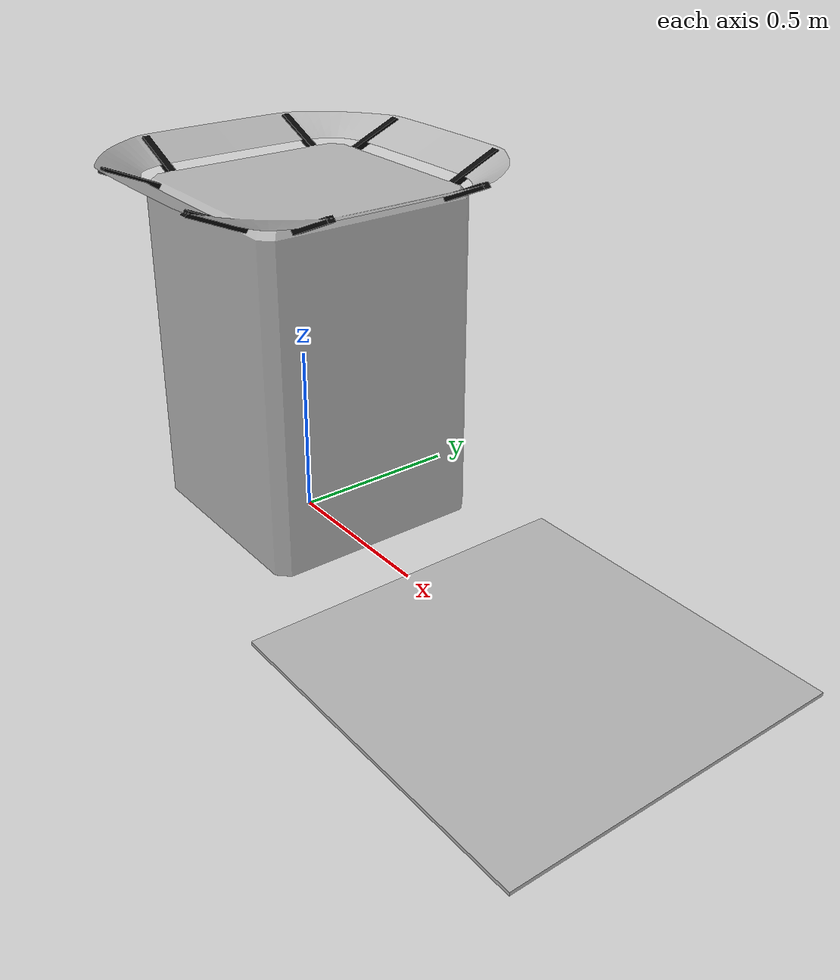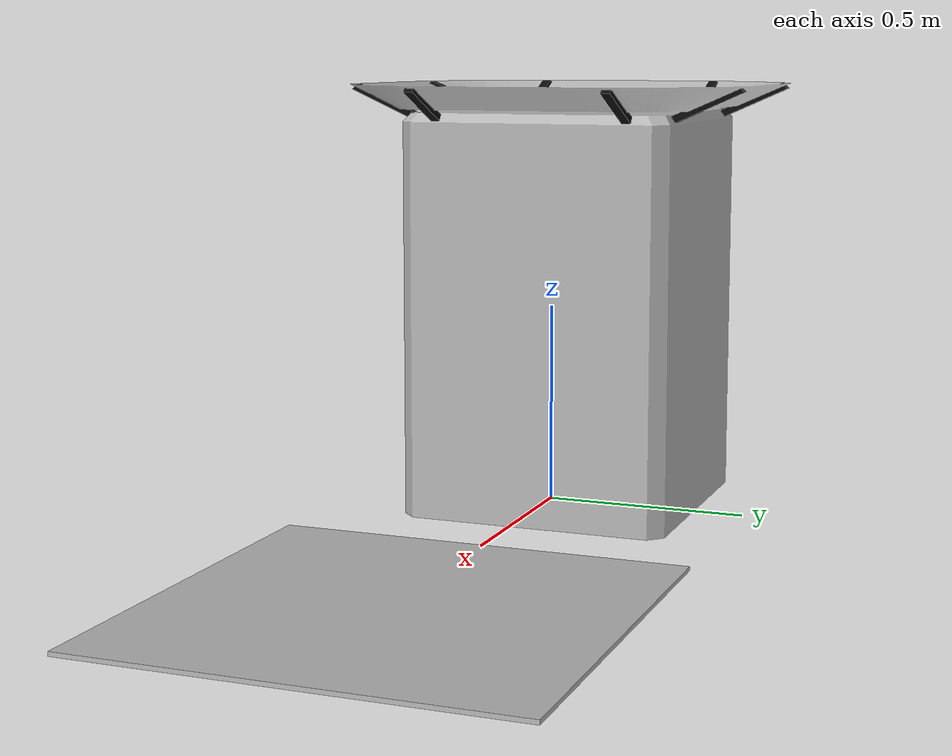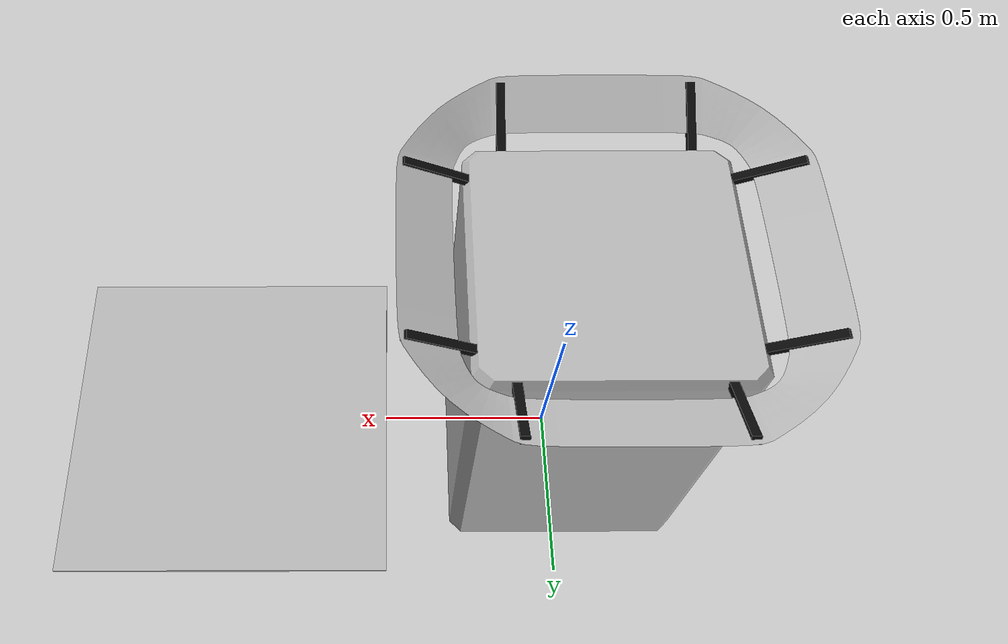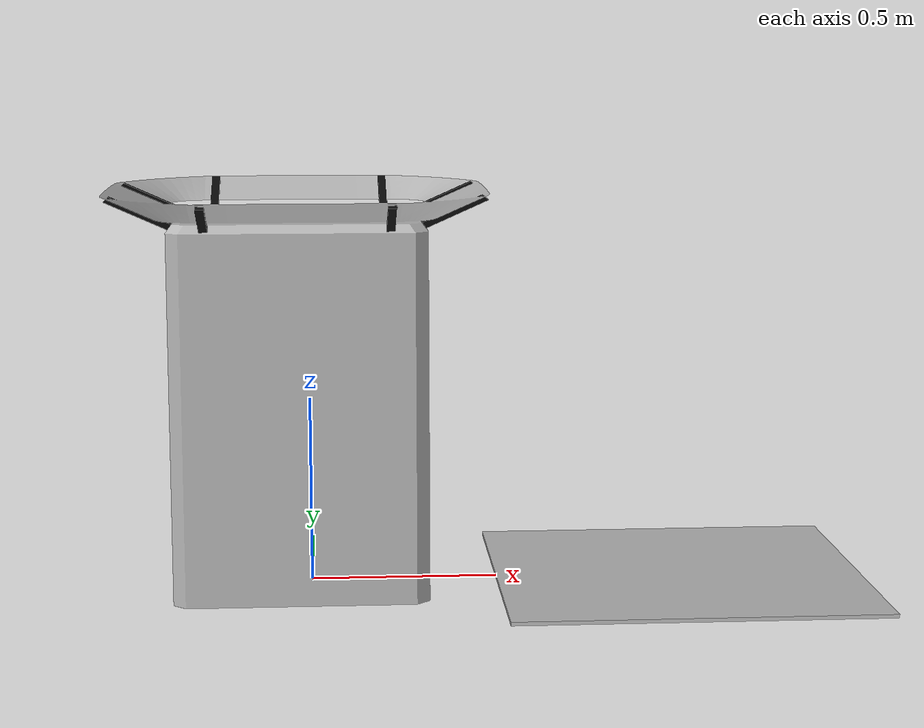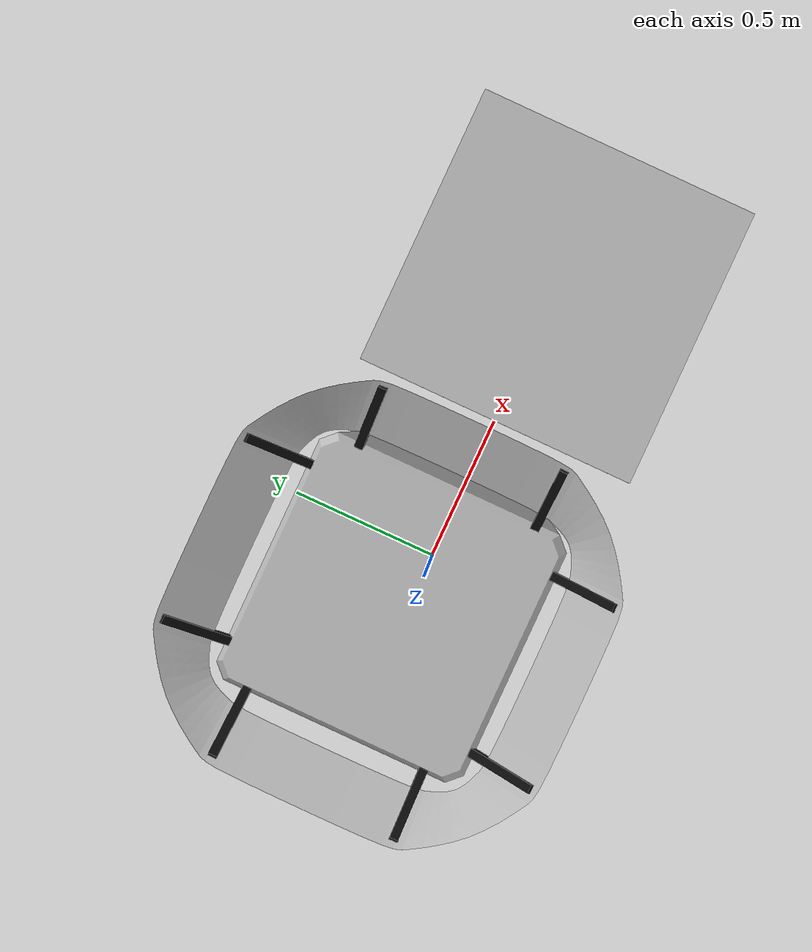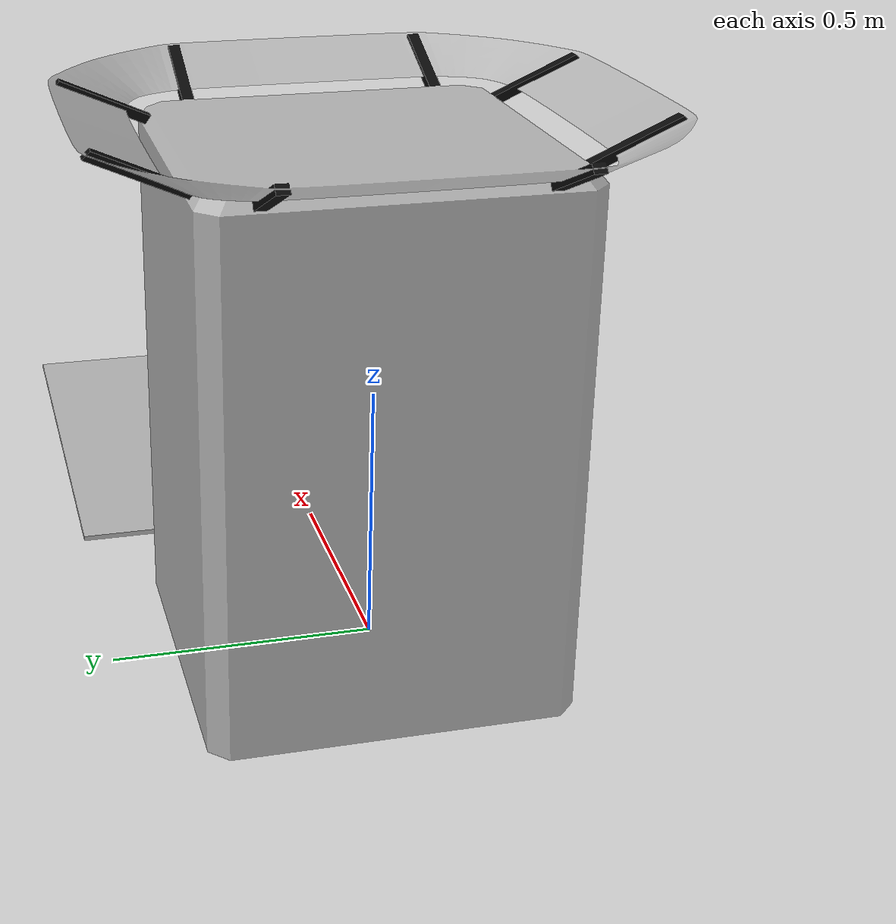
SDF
<?xml version="1.0" ?>
<sdf version="1.5">
  <model name="dronepoint_red">
    <static>true</static>
    <link name="link">
      <collision name="collision">
        <geometry>
          <mesh>
            <uri>model://dronepoint_red/meshes/dronepoint.dae</uri>
            <scale>0.3 0.3 0.2</scale>
          </mesh>
        </geometry>
      </collision>
      <visual name="visual">
        <geometry>
          <mesh>
            <uri>model://dronepoint_red/meshes/dronepoint.dae</uri>
            <scale>0.3 0.3 0.2</scale>
          </mesh>
        </geometry>
      </visual>
      <visual name="face">
        <pose>1.0 0.0 0.0 0.0 0.0 0.0</pose>
        <geometry>
            <box>
                <size>1 1 1e-2</size>
            </box>
        </geometry>
        <material>
          <script>
              <uri>model://dronepoint/materials/scripts</uri>
              <uri>model://dronepoint/materials/textures</uri>
              <name>faces/einstein</name>
          </script>
        </material>
      </visual>
    </link>
  </model>
</sdf>
